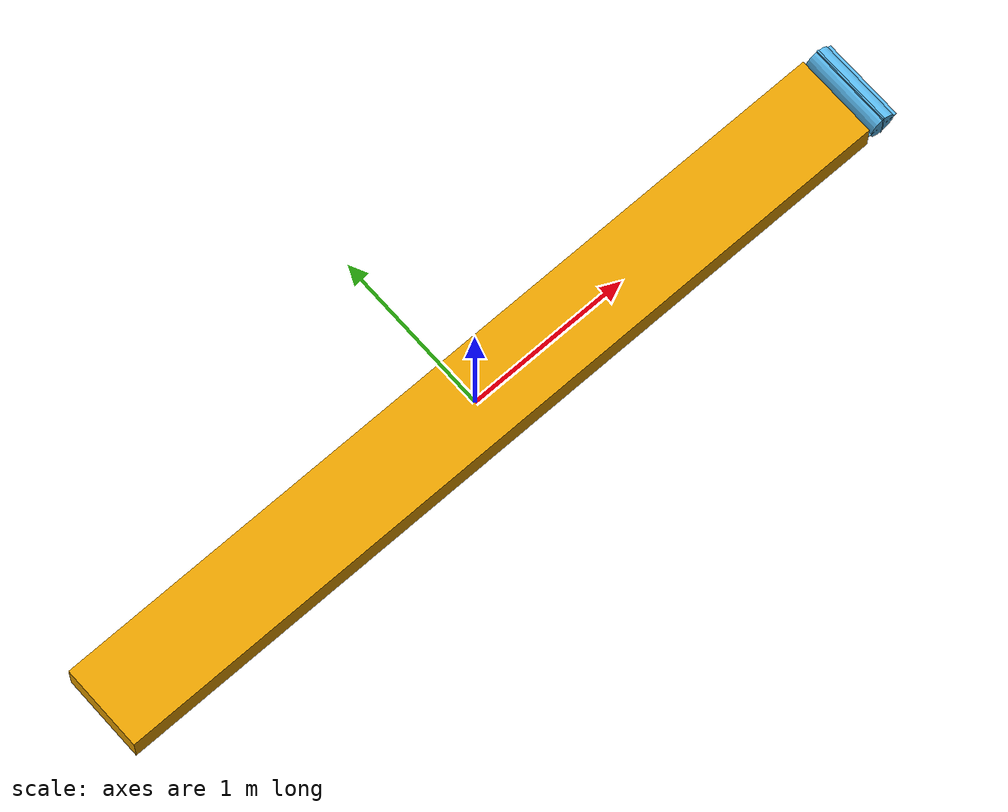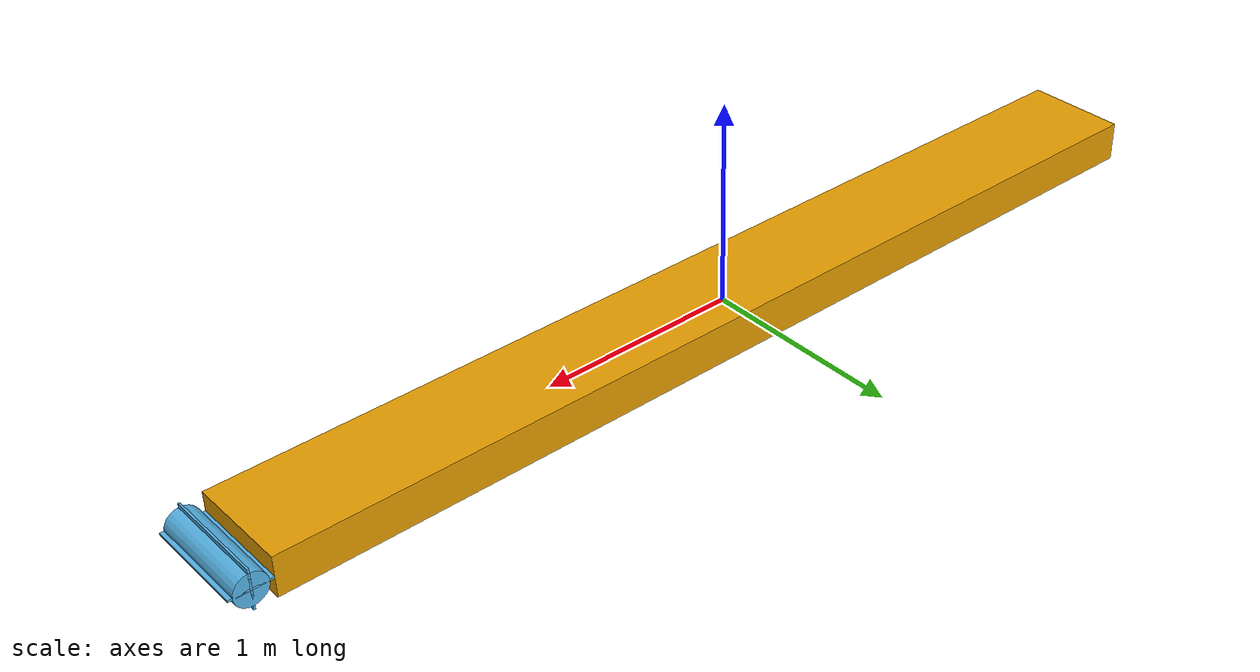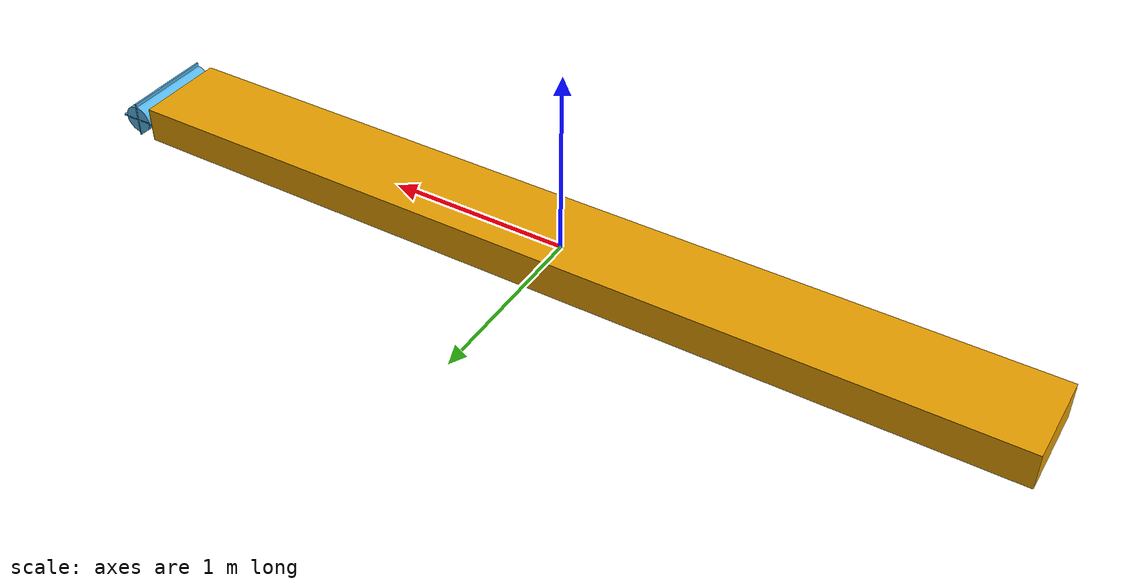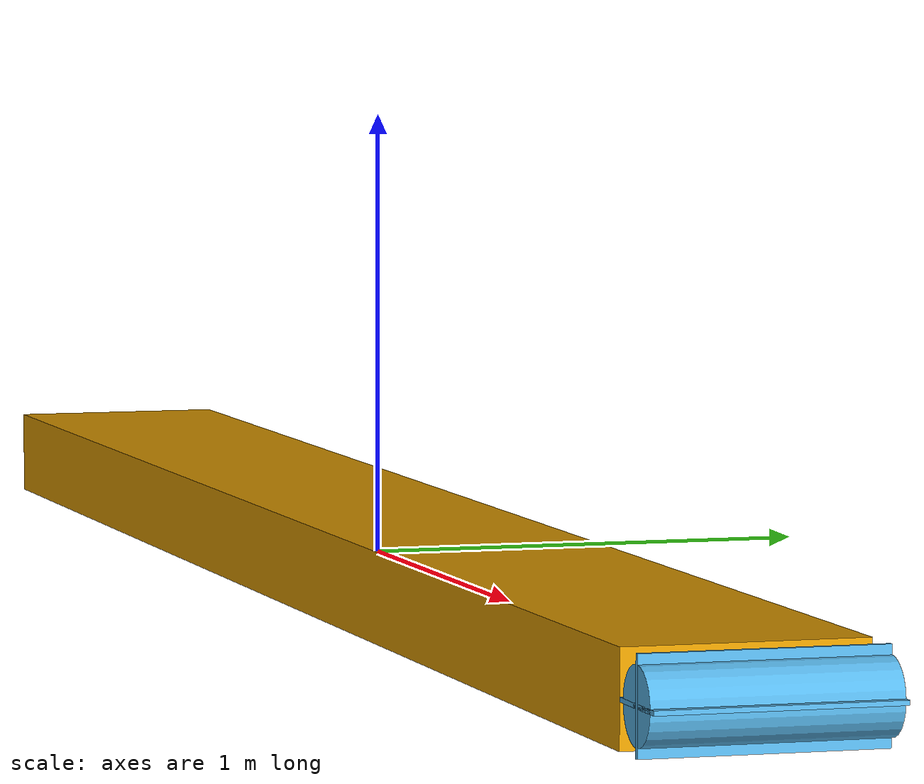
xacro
<robot name="example_conveyor" xmlns:xacro="http://www.ros.org/wiki/xacro">

    <!-- URDF file for general ROS systems such as ros_control, rviz, etc.           -->
    <!-- We define here;                                                             -->
    <!--     * a body to be wrapped by the track                                     -->
    <!--     * a sprocket to drive the track                                         -->
    <!--     * an axle and actuator for the sprocket                                 -->
    <!--     * an idler wheel on the other side of the sprocket                      -->
    <!-- Other entities specialized for Gazebo are defined in *_gazebo.urdf.xacro .  -->

    <xacro:macro name="make_box_inertia" params="mass size_x size_y size_z">
        <inertial>
            <mass value="${mass}" />
            <inertia ixx="${mass * (size_y * size_y + size_z * size_z) / 12}" ixy="0" ixz="0" iyy="${mass * (size_z * size_z + size_x * size_x) / 12}" iyz="0" izz="${mass * (size_x * size_x + size_y * size_y) / 12}" />
        </inertial>
    </xacro:macro>

    <xacro:macro name="make_wheel_inertia" params="mass radius length">
        <inertial>
            <mass value="${mass}" />
            <!-- assuming axis of cylinder is y, not z -->
            <inertia ixx="${mass * (radius * radius / 4 + length * length / 12)}" ixy="0" ixz="0" iyy="${mass * radius * radius / 2}" iyz="0" izz="${mass * (radius * radius / 4 + length * length / 12)}" />
        </inertial>
    </xacro:macro>

    <!-- body to be wrapped by the track -->

    <link name="body">
        <xacro:make_box_inertia mass="50" size_x="5.0" size_y="0.51" size_z="0.2" />

        <visual>
            <geometry>
                <box size="5.0 0.51 0.2" />
            </geometry>
        </visual>

        <collision>
            <geometry>
                <box size="5.0 0.51 0.2" />
            </geometry>
        </collision>
    </link>

    <!-- sprocket driving the track -->

    <link name="sprocket">
        <xacro:make_wheel_inertia mass="1" radius="0.08" length="0.51" />

        <visual>
            <origin xyz="0 0 0" rpy="${pi / 2} 0 0" />
            <geometry>
                <cylinder radius="0.08" length="0.51" />
            </geometry>
        </visual>
        <visual>
            <geometry>
                <box size="0.01 0.51 0.20" />
            </geometry>
        </visual>
        <visual>
            <geometry>
                <box size="0.20 0.51 0.01" />
            </geometry>
        </visual>

        <collision>
            <origin xyz="0 0 0" rpy="${pi / 2} 0 0" />
            <geometry>
                <cylinder radius="0.08" length="0.51" />
            </geometry>
        </collision>
    </link>

    <joint name="sprocket_axle" type="continuous">
        <origin xyz="2.6 0 0" rpy="0 0 0" />
        <parent link="body" />
        <child link="sprocket" />
        <axis xyz="0 1 0" />
    </joint>

    <transmission name="sprocket_transmission">
        <type>transmission_interface/SimpleTransmission</type>
        <joint name="sprocket_axle">
            <hardwareInterface>hardware_interface/VelocityJointInterface</hardwareInterface>
        </joint>
        <actuator name="sprocket_actuator">
            <mechanicalReduction>1</mechanicalReduction>
        </actuator>
    </transmission>

</robot>
